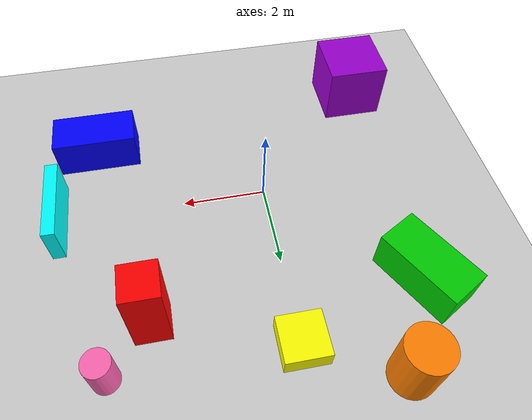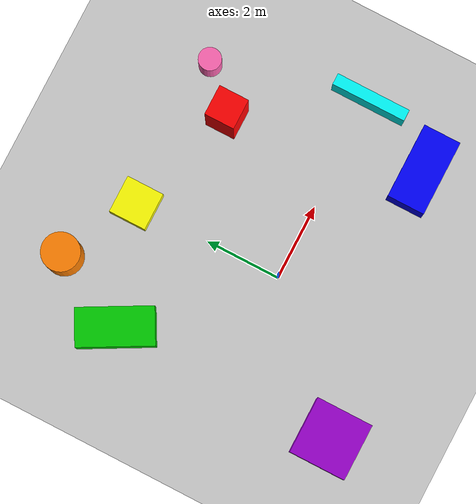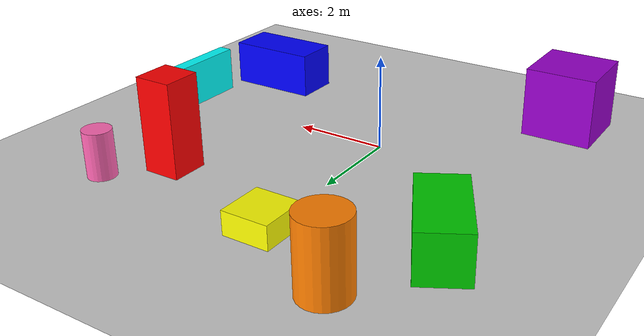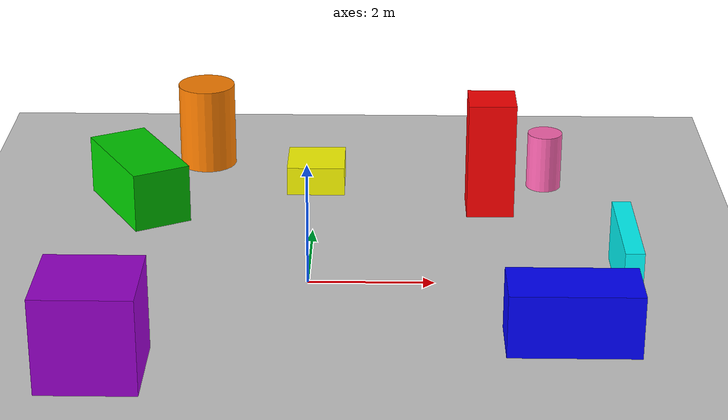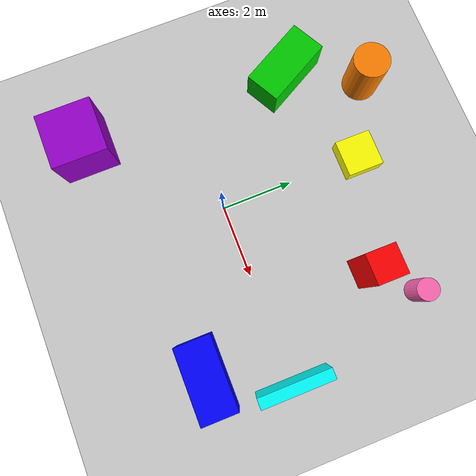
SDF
<?xml version="1.0" ?>
<sdf version="1.5">
  <world name="default">
    <!-- A global light source -->
    <include>
      <uri>model://sun</uri>
    </include>
    <!-- A ground plane -->
    <include>
      <uri>model://ground_plane</uri>
    </include>
    <include>
      <uri>model://asphalt_plane</uri>
    </include>

    <!-- ===== 彩色障碍物 ===== -->

    <!-- 红色高柱 (Box) - 位置：东北方向 -->
    <model name="red_pillar">
      <pose>3 3 1 0 0 0</pose>
      <link name="link">
        <collision name="collision">
          <geometry>
            <box>
              <size>0.8 0.8 2</size>
            </box>
          </geometry>
        </collision>
        <visual name="visual">
          <geometry>
            <box>
              <size>0.8 0.8 2</size>
            </box>
          </geometry>
          <material>
            <ambient>1 0 0 1</ambient>
            <diffuse>1 0 0 1</diffuse>
            <specular>0.3 0.3 0.3 1</specular>
          </material>
        </visual>
      </link>
    </model>

    <!-- 蓝色矮块 (Box) - 位置：东南方向 -->
    <model name="blue_block">
      <pose>4 -2 0.5 0 0 0</pose>
      <link name="link">
        <collision name="collision">
          <geometry>
            <box>
              <size>2 1 1</size>
            </box>
          </geometry>
        </collision>
        <visual name="visual">
          <geometry>
            <box>
              <size>2 1 1</size>
            </box>
          </geometry>
          <material>
            <ambient>0 0 1 1</ambient>
            <diffuse>0 0 1 1</diffuse>
            <specular>0.3 0.3 0.3 1</specular>
          </material>
        </visual>
      </link>
    </model>

    <!-- 绿色长块 (Box) - 位置：西北方向 -->
    <model name="green_block">
      <pose>-3 3 0.5 0 0 0.5</pose>
      <link name="link">
        <collision name="collision">
          <geometry>
            <box>
              <size>1 2 1</size>
            </box>
          </geometry>
        </collision>
        <visual name="visual">
          <geometry>
            <box>
              <size>1 2 1</size>
            </box>
          </geometry>
          <material>
            <ambient>0 0.8 0 1</ambient>
            <diffuse>0 0.8 0 1</diffuse>
            <specular>0.3 0.3 0.3 1</specular>
          </material>
        </visual>
      </link>
    </model>

    <!-- 黄色矮墩 (Box) - 位置：正前方 -->
    <model name="yellow_block">
      <pose>0 4 0.25 0 0 0</pose>
      <link name="link">
        <collision name="collision">
          <geometry>
            <box>
              <size>1 1 0.5</size>
            </box>
          </geometry>
        </collision>
        <visual name="visual">
          <geometry>
            <box>
              <size>1 1 0.5</size>
            </box>
          </geometry>
          <material>
            <ambient>1 1 0 1</ambient>
            <diffuse>1 1 0 1</diffuse>
            <specular>0.3 0.3 0.3 1</specular>
          </material>
        </visual>
      </link>
    </model>

    <!-- 紫色立方体 (Box) - 位置：西南方向 -->
    <model name="purple_cube">
      <pose>-3 -3 0.75 0 0 0</pose>
      <link name="link">
        <collision name="collision">
          <geometry>
            <box>
              <size>1.5 1.5 1.5</size>
            </box>
          </geometry>
        </collision>
        <visual name="visual">
          <geometry>
            <box>
              <size>1.5 1.5 1.5</size>
            </box>
          </geometry>
          <material>
            <ambient>0.6 0 0.8 1</ambient>
            <diffuse>0.6 0 0.8 1</diffuse>
            <specular>0.3 0.3 0.3 1</specular>
          </material>
        </visual>
      </link>
    </model>

    <!-- 青色长墙 (Box) - 位置：正右方 -->
    <model name="cyan_wall">
      <pose>5 0 0.5 0 0 1.57</pose>
      <link name="link">
        <collision name="collision">
          <geometry>
            <box>
              <size>2 0.3 1</size>
            </box>
          </geometry>
        </collision>
        <visual name="visual">
          <geometry>
            <box>
              <size>2 0.3 1</size>
            </box>
          </geometry>
          <material>
            <ambient>0 1 1 1</ambient>
            <diffuse>0 1 1 1</diffuse>
            <specular>0.3 0.3 0.3 1</specular>
          </material>
        </visual>
      </link>
    </model>

    <!-- 橙色圆柱 (Cylinder) - 位置：左前方 -->
    <model name="orange_cylinder">
      <pose>-2 5 0.75 0 0 0</pose>
      <link name="link">
        <collision name="collision">
          <geometry>
            <cylinder>
              <radius>0.5</radius>
              <length>1.5</length>
            </cylinder>
          </geometry>
        </collision>
        <visual name="visual">
          <geometry>
            <cylinder>
              <radius>0.5</radius>
              <length>1.5</length>
            </cylinder>
          </geometry>
          <material>
            <ambient>1 0.5 0 1</ambient>
            <diffuse>1 0.5 0 1</diffuse>
            <specular>0.3 0.3 0.3 1</specular>
          </material>
        </visual>
      </link>
    </model>

    <!-- 粉色小柱 (Cylinder) - 位置：右后方 -->
    <model name="pink_pillar">
      <pose>4 4 0.5 0 0 0</pose>
      <link name="link">
        <collision name="collision">
          <geometry>
            <cylinder>
              <radius>0.3</radius>
              <length>1</length>
            </cylinder>
          </geometry>
        </collision>
        <visual name="visual">
          <geometry>
            <cylinder>
              <radius>0.3</radius>
              <length>1</length>
            </cylinder>
          </geometry>
          <material>
            <ambient>1 0.4 0.7 1</ambient>
            <diffuse>1 0.4 0.7 1</diffuse>
            <specular>0.3 0.3 0.3 1</specular>
          </material>
        </visual>
      </link>
    </model>

    <physics name='default_physics' default='0' type='ode'>
      <gravity>0 0 -9.8066</gravity>
      <ode>
        <solver>
          <type>quick</type>
          <iters>10</iters>
          <sor>1.3</sor>
          <use_dynamic_moi_rescaling>0</use_dynamic_moi_rescaling>
        </solver>
        <constraints>
          <cfm>0</cfm>
          <erp>0.2</erp>
          <contact_max_correcting_vel>100</contact_max_correcting_vel>
          <contact_surface_layer>0.001</contact_surface_layer>
        </constraints>
      </ode>
      <max_step_size>0.004</max_step_size>
      <real_time_factor>1</real_time_factor>
      <real_time_update_rate>250</real_time_update_rate>
      <magnetic_field>6.0e-6 2.3e-5 -4.2e-5</magnetic_field>
    </physics>
  </world>
</sdf>
